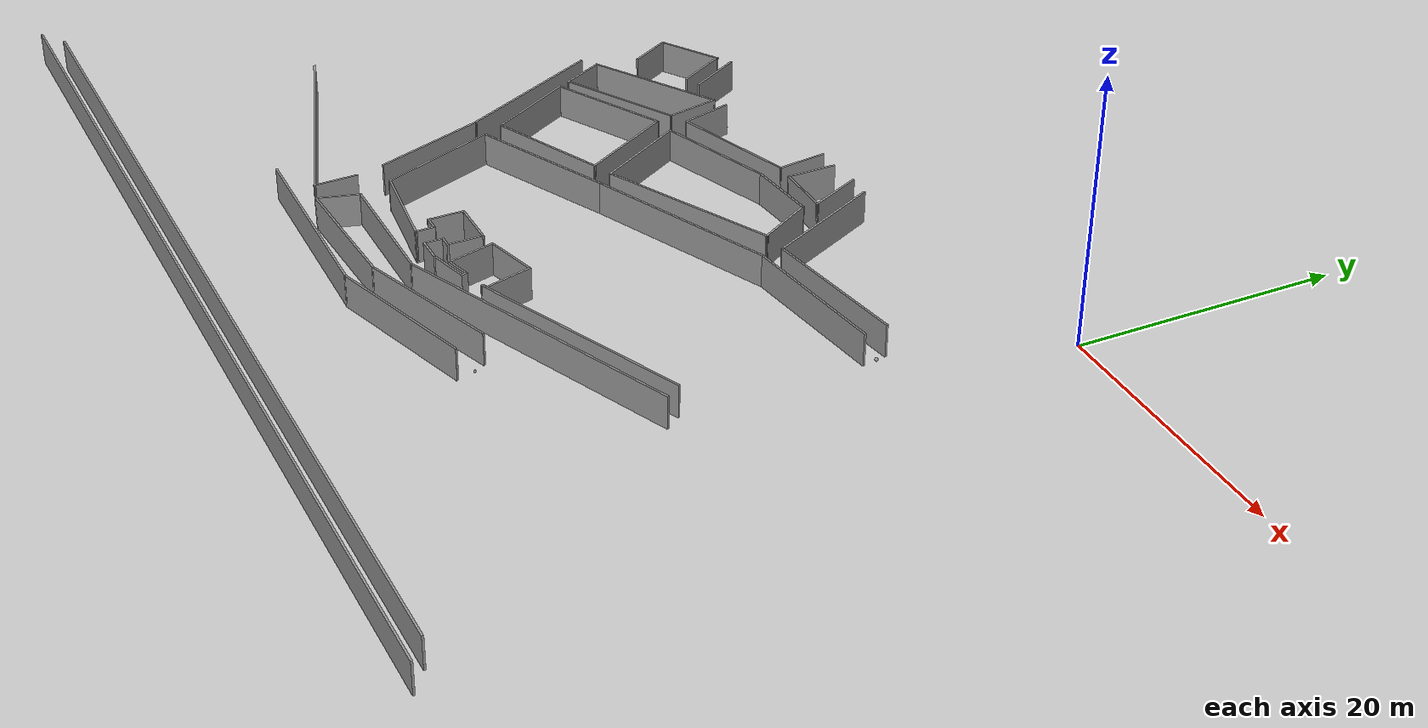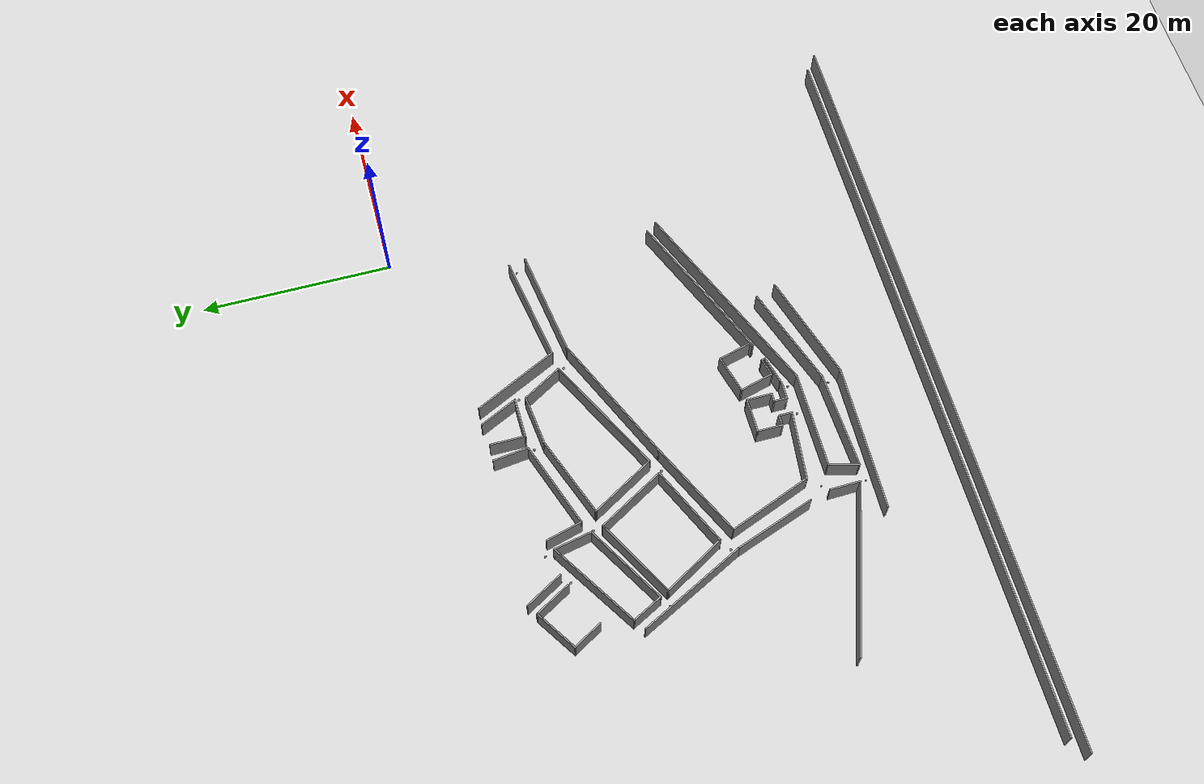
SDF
<sdf version="1.7">
 <world name="default">
  <model name="ground_plane">
   <static>1</static>
   <link name="link">
    <collision name="collision">
     <geometry><plane><normal>0 0 1</normal><size>100 100</size></plane></geometry>
     <surface><friction><ode><mu>100</mu><mu2>50</mu2></ode></friction></surface>
    </collision>
    <visual name="visual">
     <cast_shadows>0</cast_shadows>
     <geometry><plane><normal>0 0 1</normal><size>100 100</size></plane></geometry>
     <material>
      <script><uri>file://media/materials/scripts/gazebo.material</uri><name>Gazebo/Grey</name></script>
     </material>
    </visual>
   </link>
  </model>
  <model name="final_max_v1">
   <pose>-2.5231 0.6891 0 0 -0 0</pose>
   <link name="Wall_465">
    <collision name="Wall_465_Collision">
     <geometry><box><size>4.5 0.15 2.5</size></box></geometry>
     <pose>0 0 1.25 0 -0 0</pose>
    </collision>
    <visual name="Wall_465_Visual">
     <pose>0 0 1.25 0 -0 0</pose>
     <geometry><box><size>4.5 0.15 2.5</size></box></geometry>
     <material>
      <script><uri>file://media/materials/scripts/gazebo.material</uri><name>Gazebo/Grey</name></script>
      <ambient>1 1 1 1</ambient>
     </material>
     <meta><layer>0</layer></meta>
    </visual>
    <pose>-37.4503 -7.52646 0 0 -0 -1.0472</pose>
   </link>
   <link name="Wall_469">
    <collision name="Wall_469_Collision">
     <geometry><box><size>4.25 0.15 2.5</size></box></geometry>
     <pose>0 0 1.25 0 -0 0</pose>
    </collision>
    <visual name="Wall_469_Visual">
     <pose>0 0 1.25 0 -0 0</pose>
     <geometry><box><size>4.25 0.15 2.5</size></box></geometry>
     <material>
      <script><uri>file://media/materials/scripts/gazebo.material</uri><name>Gazebo/Grey</name></script>
      <ambient>1 1 1 1</ambient>
     </material>
     <meta><layer>0</layer></meta>
    </visual>
    <pose>-38.5562 -8.09874 0 0 -0 -1.0472</pose>
   </link>
   <link name="Wall_484">
    <collision name="Wall_484_Collision">
     <geometry><box><size>3.28141 0.15 2.5</size></box></geometry>
     <pose>0 0 1.25 0 -0 0</pose>
    </collision>
    <visual name="Wall_484_Visual">
     <pose>0 0 1.25 0 -0 0</pose>
     <geometry><box><size>3.28141 0.15 2.5</size></box></geometry>
     <material>
      <script><uri>file://media/materials/scripts/gazebo.material</uri><name>Gazebo/Grey</name></script>
      <ambient>1 1 1 1</ambient>
     </material>
     <meta><layer>0</layer></meta>
    </visual>
    <pose>-34.6377 -38.8153 0 0 -0 1.59579</pose>
   </link>
   <link name="Wall_486">
    <collision name="Wall_486_Collision">
     <geometry><box><size>18.0929 0.15 2.5</size></box></geometry>
     <pose>0 0 1.25 0 -0 0</pose>
    </collision>
    <visual name="Wall_486_Visual">
     <pose>0 0 1.25 0 -0 0</pose>
     <geometry><box><size>18.0929 0.15 2.5</size></box></geometry>
     <material>
      <script><uri>file://media/materials/scripts/gazebo.material</uri><name>Gazebo/Grey</name></script>
      <ambient>1 1 1 1</ambient>
     </material>
     <meta><layer>0</layer></meta>
    </visual>
    <pose>-43.0899 -37.4849 0 0 -0 2.81295</pose>
   </link>
   <link name="Wall_493">
    <collision name="Wall_493_Collision">
     <geometry><box><size>3.25 0.15 2.5</size></box></geometry>
     <pose>0 0 1.25 0 -0 0</pose>
    </collision>
    <visual name="Wall_493_Visual">
     <pose>0 0 1.25 0 -0 0</pose>
     <geometry><box><size>3.25 0.15 2.5</size></box></geometry>
     <material>
      <script><uri>file://media/materials/scripts/gazebo.material</uri><name>Gazebo/Grey</name></script>
      <ambient>1 1 1 1</ambient>
     </material>
     <meta><layer>0</layer></meta>
    </visual>
    <pose>-32.4716 -39.3814 0 0 -0 1.309</pose>
   </link>
   <link name="Wall_494">
    <collision name="Wall_494_Collision">
     <geometry><box><size>10.25 0.15 2.5</size></box></geometry>
     <pose>0 0 1.25 0 -0 0</pose>
    </collision>
    <visual name="Wall_494_Visual">
     <pose>0 0 1.25 0 -0 0</pose>
     <geometry><box><size>10.25 0.15 2.5</size></box></geometry>
     <material>
      <script><uri>file://media/materials/scripts/gazebo.material</uri><name>Gazebo/Grey</name></script>
      <ambient>1 1 1 1</ambient>
     </material>
     <meta><layer>0</layer></meta>
    </visual>
    <pose>-27.0205 -37.8842 0 0 -0 0</pose>
   </link>
   <link name="Wall_496">
    <collision name="Wall_496_Collision">
     <geometry><box><size>23.1194 0.15 2.5</size></box></geometry>
     <pose>0 0 1.25 0 -0 0</pose>
    </collision>
    <visual name="Wall_496_Visual">
     <pose>0 0 1.25 0 -0 0</pose>
     <geometry><box><size>23.1194 0.15 2.5</size></box></geometry>
     <material>
      <script><uri>file://media/materials/scripts/gazebo.material</uri><name>Gazebo/Grey</name></script>
      <ambient>1 1 1 1</ambient>
     </material>
     <meta><layer>0</layer></meta>
    </visual>
    <pose>-11.3836 -33.4327 0 0 -0 0.398025</pose>
   </link>
   <link name="Wall_501">
    <collision name="Wall_501_Collision">
     <geometry><box><size>10.3347 0.15 2.5</size></box></geometry>
     <pose>0 0 1.25 0 -0 0</pose>
    </collision>
    <visual name="Wall_501_Visual">
     <pose>0 0 1.25 0 -0 0</pose>
     <geometry><box><size>10.3347 0.15 2.5</size></box></geometry>
     <material>
      <script><uri>file://media/materials/scripts/gazebo.material</uri><name>Gazebo/Grey</name></script>
      <ambient>1 1 1 1</ambient>
     </material>
     <meta><layer>0</layer></meta>
    </visual>
    <pose>-27.7872 -40.6165 0 0 -0 0.051487</pose>
   </link>
   <link name="Wall_502">
    <collision name="Wall_502_Collision">
     <geometry><box><size>11.2662 0.15 2.5</size></box></geometry>
     <pose>0 0 1.25 0 -0 0</pose>
    </collision>
    <visual name="Wall_502_Visual">
     <pose>0 0 1.25 0 -0 0</pose>
     <geometry><box><size>11.2662 0.15 2.5</size></box></geometry>
     <material>
      <script><uri>file://media/materials/scripts/gazebo.material</uri><name>Gazebo/Grey</name></script>
      <ambient>1 1 1 1</ambient>
     </material>
     <meta><layer>0</layer></meta>
    </visual>
    <pose>-17.4514 -38.5302 0 0 -0 0.334408</pose>
   </link>
   <link name="Wall_510">
    <collision name="Wall_510_Collision">
     <geometry><box><size>7.39808 0.15 2.5</size></box></geometry>
     <pose>0 0 1.25 0 -0 0</pose>
    </collision>
    <visual name="Wall_510_Visual">
     <pose>0 0 1.25 0 -0 0</pose>
     <geometry><box><size>7.39808 0.15 2.5</size></box></geometry>
     <material>
      <script><uri>file://media/materials/scripts/gazebo.material</uri><name>Gazebo/Grey</name></script>
      <ambient>1 1 1 1</ambient>
     </material>
     <meta><layer>0</layer></meta>
    </visual>
    <pose>-29.3327 -35.7676 0 0 -0 3.03199</pose>
   </link>
   <link name="Wall_512">
    <collision name="Wall_512_Collision">
     <geometry><box><size>1.5 0.15 2.5</size></box></geometry>
     <pose>0 0 1.25 0 -0 0</pose>
    </collision>
    <visual name="Wall_512_Visual">
     <pose>0 0 1.25 0 -0 0</pose>
     <geometry><box><size>1.5 0.15 2.5</size></box></geometry>
     <material>
      <script><uri>file://media/materials/scripts/gazebo.material</uri><name>Gazebo/Grey</name></script>
      <ambient>1 1 1 1</ambient>
     </material>
     <meta><layer>0</layer></meta>
    </visual>
    <pose>-25.7305 -35.489 0 0 -0 1.5708</pose>
   </link>
   <link name="Wall_513">
    <collision name="Wall_513_Collision">
     <geometry><box><size>1.25 0.15 2.5</size></box></geometry>
     <pose>0 0 1.25 0 -0 0</pose>
    </collision>
    <visual name="Wall_513_Visual">
     <pose>0 0 1.25 0 -0 0</pose>
     <geometry><box><size>1.25 0.15 2.5</size></box></geometry>
     <material>
      <script><uri>file://media/materials/scripts/gazebo.material</uri><name>Gazebo/Grey</name></script>
      <ambient>1 1 1 1</ambient>
     </material>
     <meta><layer>0</layer></meta>
    </visual>
    <pose>-26.2805 -34.814 0 0 -0 3.14159</pose>
   </link>
   <link name="Wall_514">
    <collision name="Wall_514_Collision">
     <geometry><box><size>2.75 0.15 2.5</size></box></geometry>
     <pose>0 0 1.25 0 -0 0</pose>
    </collision>
    <visual name="Wall_514_Visual">
     <pose>0 0 1.25 0 -0 0</pose>
     <geometry><box><size>2.75 0.15 2.5</size></box></geometry>
     <material>
      <script><uri>file://media/materials/scripts/gazebo.material</uri><name>Gazebo/Grey</name></script>
      <ambient>1 1 1 1</ambient>
     </material>
     <meta><layer>0</layer></meta>
    </visual>
    <pose>-26.8305 -33.514 0 0 -0 1.5708</pose>
   </link>
   <link name="Wall_515">
    <collision name="Wall_515_Collision">
     <geometry><box><size>3.75 0.15 2.5</size></box></geometry>
     <pose>0 0 1.25 0 -0 0</pose>
    </collision>
    <visual name="Wall_515_Visual">
     <pose>0 0 1.25 0 -0 0</pose>
     <geometry><box><size>3.75 0.15 2.5</size></box></geometry>
     <material>
      <script><uri>file://media/materials/scripts/gazebo.material</uri><name>Gazebo/Grey</name></script>
      <ambient>1 1 1 1</ambient>
     </material>
     <meta><layer>0</layer></meta>
    </visual>
    <pose>-25.0305 -32.214 0 0 -0 0</pose>
   </link>
   <link name="Wall_525">
    <collision name="Wall_525_Collision">
     <geometry><box><size>2.75 0.15 2.5</size></box></geometry>
     <pose>0 0 1.25 0 -0 0</pose>
    </collision>
    <visual name="Wall_525_Visual">
     <pose>0 0 1.25 0 -0 0</pose>
     <geometry><box><size>2.75 0.15 2.5</size></box></geometry>
     <material>
      <script><uri>file://media/materials/scripts/gazebo.material</uri><name>Gazebo/Grey</name></script>
      <ambient>1 1 1 1</ambient>
     </material>
     <meta><layer>0</layer></meta>
    </visual>
    <pose>-23.2305 -33.514 0 0 -0 -1.5708</pose>
   </link>
   <link name="Wall_526">
    <collision name="Wall_526_Collision">
     <geometry><box><size>1 0.15 2.5</size></box></geometry>
     <pose>0 0 1.25 0 -0 0</pose>
    </collision>
    <visual name="Wall_526_Visual">
     <pose>0 0 1.25 0 -0 0</pose>
     <geometry><box><size>1 0.15 2.5</size></box></geometry>
     <material>
      <script><uri>file://media/materials/scripts/gazebo.material</uri><name>Gazebo/Grey</name></script>
      <ambient>1 1 1 1</ambient>
     </material>
     <meta><layer>0</layer></meta>
    </visual>
    <pose>-23.6555 -34.814 0 0 -0 3.14159</pose>
   </link>
   <link name="Wall_527">
    <collision name="Wall_527_Collision">
     <geometry><box><size>0.15 0.15 2.5</size></box></geometry>
     <pose>0 0 1.25 0 -0 0</pose>
    </collision>
    <visual name="Wall_527_Visual">
     <pose>0 0 1.25 0 -0 0</pose>
     <geometry><box><size>0.15 0.15 2.5</size></box></geometry>
     <material>
      <script><uri>file://media/materials/scripts/gazebo.material</uri><name>Gazebo/Grey</name></script>
      <ambient>0 0 0 1</ambient>
     </material>
     <meta><layer>0</layer></meta>
    </visual>
    <pose>-24.0805 -34.814 0 0 -0 0</pose>
   </link>
   <link name="Wall_528">
    <collision name="Wall_528_Collision">
     <geometry><box><size>1.5 0.15 2.5</size></box></geometry>
     <pose>0 0 1.25 0 -0 0</pose>
    </collision>
    <visual name="Wall_528_Visual">
     <pose>0 0 1.25 0 -0 0</pose>
     <geometry><box><size>1.5 0.15 2.5</size></box></geometry>
     <material>
      <script><uri>file://media/materials/scripts/gazebo.material</uri><name>Gazebo/Grey</name></script>
      <ambient>1 1 1 1</ambient>
     </material>
     <meta><layer>0</layer></meta>
    </visual>
    <pose>-24.0805 -35.489 0 0 -0 -1.5708</pose>
   </link>
   <link name="Wall_530">
    <collision name="Wall_530_Collision">
     <geometry><box><size>2 0.15 2.5</size></box></geometry>
     <pose>0 0 1.25 0 -0 0</pose>
    </collision>
    <visual name="Wall_530_Visual">
     <pose>0 0 1.25 0 -0 0</pose>
     <geometry><box><size>2 0.15 2.5</size></box></geometry>
     <material>
      <script><uri>file://media/materials/scripts/gazebo.material</uri><name>Gazebo/Grey</name></script>
      <ambient>1 1 1 1</ambient>
     </material>
     <meta><layer>0</layer></meta>
    </visual>
    <pose>-23.1555 -36.164 0 0 -0 0</pose>
   </link>
   <link name="Wall_539">
    <collision name="Wall_539_Collision">
     <geometry><box><size>14.8503 0.15 2.5</size></box></geometry>
     <pose>0 0 1.25 0 -0 0</pose>
    </collision>
    <visual name="Wall_539_Visual">
     <pose>0 0 1.25 0 -0 0</pose>
     <geometry><box><size>14.8503 0.15 2.5</size></box></geometry>
     <material>
      <script><uri>file://media/materials/scripts/gazebo.material</uri><name>Gazebo/Grey</name></script>
      <ambient>1 1 1 1</ambient>
     </material>
     <meta><layer>0</layer></meta>
    </visual>
    <pose>-19.5401 -19.1375 0 0 -0 0.41761</pose>
   </link>
   <link name="Wall_540">
    <collision name="Wall_540_Collision">
     <geometry><box><size>11.4761 0.15 2.5</size></box></geometry>
     <pose>0 0 1.25 0 -0 0</pose>
    </collision>
    <visual name="Wall_540_Visual">
     <pose>0 0 1.25 0 -0 0</pose>
     <geometry><box><size>11.4761 0.15 2.5</size></box></geometry>
     <material>
      <script><uri>file://media/materials/scripts/gazebo.material</uri><name>Gazebo/Grey</name></script>
      <ambient>1 1 1 1</ambient>
     </material>
     <meta><layer>0</layer></meta>
    </visual>
    <pose>-7.21545 -15.3556 0 0 -0 0.141897</pose>
   </link>
   <link name="Wall_546">
    <collision name="Wall_546_Collision">
     <geometry><box><size>13.8284 0.15 2.5</size></box></geometry>
     <pose>0 0 1.25 0 -0 0</pose>
    </collision>
    <visual name="Wall_546_Visual">
     <pose>0 0 1.25 0 -0 0</pose>
     <geometry><box><size>13.8284 0.15 2.5</size></box></geometry>
     <material>
      <script><uri>file://media/materials/scripts/gazebo.material</uri><name>Gazebo/Grey</name></script>
      <ambient>1 1 1 1</ambient>
     </material>
     <meta><layer>0</layer></meta>
    </visual>
    <pose>-21.0345 -17.8189 0 0 -0 0.467525</pose>
   </link>
   <link name="Wall_552">
    <collision name="Wall_552_Collision">
     <geometry><box><size>9.30829 0.15 2.5</size></box></geometry>
     <pose>0 0 1.25 0 -0 0</pose>
    </collision>
    <visual name="Wall_552_Visual">
     <pose>0 0 1.25 0 -0 0</pose>
     <geometry><box><size>9.30829 0.15 2.5</size></box></geometry>
     <material>
      <script><uri>file://media/materials/scripts/gazebo.material</uri><name>Gazebo/Grey</name></script>
      <ambient>1 1 1 1</ambient>
     </material>
     <meta><layer>0</layer></meta>
    </visual>
    <pose>-34.5805 -31.0979 0 0 -0 -1.20324</pose>
   </link>
   <link name="Wall_556">
    <collision name="Wall_556_Collision">
     <geometry><box><size>11.1725 0.15 2.5</size></box></geometry>
     <pose>0 0 1.25 0 -0 0</pose>
    </collision>
    <visual name="Wall_556_Visual">
     <pose>0 0 1.25 0 -0 0</pose>
     <geometry><box><size>11.1725 0.15 2.5</size></box></geometry>
     <material>
      <script><uri>file://media/materials/scripts/gazebo.material</uri><name>Gazebo/Grey</name></script>
      <ambient>1 1 1 1</ambient>
     </material>
     <meta><layer>0</layer></meta>
    </visual>
    <pose>-31.2423 -24.4715 0 0 -0 -2.70048</pose>
   </link>
   <link name="Wall_559">
    <collision name="Wall_559_Collision">
     <geometry><box><size>7.67149 0.15 2.5</size></box></geometry>
     <pose>0 0 1.25 0 -0 0</pose>
    </collision>
    <visual name="Wall_559_Visual">
     <pose>0 0 1.25 0 -0 0</pose>
     <geometry><box><size>7.67149 0.15 2.5</size></box></geometry>
     <material>
      <script><uri>file://media/materials/scripts/gazebo.material</uri><name>Gazebo/Grey</name></script>
      <ambient>1 1 1 1</ambient>
     </material>
     <meta><layer>0</layer></meta>
    </visual>
    <pose>-29.0376 -17.6544 0 0 -0 2.09976</pose>
   </link>
   <link name="Wall_561">
    <collision name="Wall_561_Collision">
     <geometry><box><size>9.11129 0.15 2.5</size></box></geometry>
     <pose>0 0 1.25 0 -0 0</pose>
    </collision>
    <visual name="Wall_561_Visual">
     <pose>0 0 1.25 0 -0 0</pose>
     <geometry><box><size>9.11129 0.15 2.5</size></box></geometry>
     <material>
      <script><uri>file://media/materials/scripts/gazebo.material</uri><name>Gazebo/Grey</name></script>
      <ambient>1 1 1 1</ambient>
     </material>
     <meta><layer>0</layer></meta>
    </visual>
    <pose>-26.7301 -12.8612 0 0 -0 0.352405</pose>
   </link>
   <link name="Wall_564">
    <collision name="Wall_564_Collision">
     <geometry><box><size>9.25649 0.15 2.5</size></box></geometry>
     <pose>0 0 1.25 0 -0 0</pose>
    </collision>
    <visual name="Wall_564_Visual">
     <pose>0 0 1.25 0 -0 0</pose>
     <geometry><box><size>9.25649 0.15 2.5</size></box></geometry>
     <material>
      <script><uri>file://media/materials/scripts/gazebo.material</uri><name>Gazebo/Grey</name></script>
      <ambient>1 1 1 1</ambient>
     </material>
     <meta><layer>0</layer></meta>
    </visual>
    <pose>-32.7796 -23.3619 0 0 -0 0.42944</pose>
   </link>
   <link name="Wall_565">
    <collision name="Wall_565_Collision">
     <geometry><box><size>8 0.15 2.5</size></box></geometry>
     <pose>0 0 1.25 0 -0 0</pose>
    </collision>
    <visual name="Wall_565_Visual">
     <pose>0 0 1.25 0 -0 0</pose>
     <geometry><box><size>8 0.15 2.5</size></box></geometry>
     <material>
      <script><uri>file://media/materials/scripts/gazebo.material</uri><name>Gazebo/Grey</name></script>
      <ambient>1 1 1 1</ambient>
     </material>
     <meta><layer>0</layer></meta>
    </visual>
    <pose>-30.6023 -18.0669 0 0 -0 2.0944</pose>
   </link>
   <link name="Wall_566">
    <collision name="Wall_566_Collision">
     <geometry><box><size>9.23539 0.15 2.5</size></box></geometry>
     <pose>0 0 1.25 0 -0 0</pose>
    </collision>
    <visual name="Wall_566_Visual">
     <pose>0 0 1.25 0 -0 0</pose>
     <geometry><box><size>9.23539 0.15 2.5</size></box></geometry>
     <material>
      <script><uri>file://media/materials/scripts/gazebo.material</uri><name>Gazebo/Grey</name></script>
      <ambient>1 1 1 1</ambient>
     </material>
     <meta><layer>0</layer></meta>
    </visual>
    <pose>-36.5605 -16.8289 0 0 -0 -2.6458</pose>
   </link>
   <link name="Wall_567">
    <collision name="Wall_567_Collision">
     <geometry><box><size>7.39646 0.15 2.5</size></box></geometry>
     <pose>0 0 1.25 0 -0 0</pose>
    </collision>
    <visual name="Wall_567_Visual">
     <pose>0 0 1.25 0 -0 0</pose>
     <geometry><box><size>7.39646 0.15 2.5</size></box></geometry>
     <material>
      <script><uri>file://media/materials/scripts/gazebo.material</uri><name>Gazebo/Grey</name></script>
      <ambient>1 1 1 1</ambient>
     </material>
     <meta><layer>0</layer></meta>
    </visual>
    <pose>-38.7378 -22.1238 0 0 -0 -1.04503</pose>
   </link>
   <link name="Wall_570">
    <collision name="Wall_570_Collision">
     <geometry><box><size>8.86336 0.15 2.5</size></box></geometry>
     <pose>0 0 1.25 0 -0 0</pose>
    </collision>
    <visual name="Wall_570_Visual">
     <pose>0 0 1.25 0 -0 0</pose>
     <geometry><box><size>8.86336 0.15 2.5</size></box></geometry>
     <material>
      <script><uri>file://media/materials/scripts/gazebo.material</uri><name>Gazebo/Grey</name></script>
      <ambient>1 1 1 1</ambient>
     </material>
     <meta><layer>0</layer></meta>
    </visual>
    <pose>-36.6872 -30.9064 0 0 -0 1.91501</pose>
   </link>
   <link name="Wall_571">
    <collision name="Wall_571_Collision">
     <geometry><box><size>12.3657 0.15 2.5</size></box></geometry>
     <pose>0 0 1.25 0 -0 0</pose>
    </collision>
    <visual name="Wall_571_Visual">
     <pose>0 0 1.25 0 -0 0</pose>
     <geometry><box><size>12.3657 0.15 2.5</size></box></geometry>
     <material>
      <script><uri>file://media/materials/scripts/gazebo.material</uri><name>Gazebo/Grey</name></script>
      <ambient>1 1 1 1</ambient>
     </material>
     <meta><layer>0</layer></meta>
    </visual>
    <pose>-40.9044 -21.35 0 0 -0 2.03728</pose>
   </link>
   <link name="Wall_576">
    <collision name="Wall_576_Collision">
     <geometry><box><size>5.446 0.15 2.5</size></box></geometry>
     <pose>0 0 1.25 0 -0 0</pose>
    </collision>
    <visual name="Wall_576_Visual">
     <pose>0 0 1.25 0 -0 0</pose>
     <geometry><box><size>5.446 0.15 2.5</size></box></geometry>
     <material>
      <script><uri>file://media/materials/scripts/gazebo.material</uri><name>Gazebo/Grey</name></script>
      <ambient>1 1 1 1</ambient>
     </material>
     <meta><layer>0</layer></meta>
    </visual>
    <pose>-19.8928 -11.024 0 0 -0 0.10998</pose>
   </link>
   <link name="Wall_578">
    <collision name="Wall_578_Collision">
     <geometry><box><size>4.78278 0.15 2.5</size></box></geometry>
     <pose>0 0 1.25 0 -0 0</pose>
    </collision>
    <visual name="Wall_578_Visual">
     <pose>0 0 1.25 0 -0 0</pose>
     <geometry><box><size>4.78278 0.15 2.5</size></box></geometry>
     <material>
      <script><uri>file://media/materials/scripts/gazebo.material</uri><name>Gazebo/Grey</name></script>
      <ambient>1 1 1 1</ambient>
     </material>
     <meta><layer>0</layer></meta>
    </visual>
    <pose>-16.0951 -12.735 0 0 -0 -1.0434</pose>
   </link>
   <link name="Wall_583">
    <collision name="Wall_583_Collision">
     <geometry><box><size>4.15341 0.15 2.5</size></box></geometry>
     <pose>0 0 1.25 0 -0 0</pose>
    </collision>
    <visual name="Wall_583_Visual">
     <pose>0 0 1.25 0 -0 0</pose>
     <geometry><box><size>4.15341 0.15 2.5</size></box></geometry>
     <material>
      <script><uri>file://media/materials/scripts/gazebo.material</uri><name>Gazebo/Grey</name></script>
      <ambient>1 1 1 1</ambient>
     </material>
     <meta><layer>0</layer></meta>
    </visual>
    <pose>-33.2902 -11.4567 0 0 -0 -1.3738</pose>
   </link>
   <link name="Wall_584">
    <collision name="Wall_584_Collision">
     <geometry><box><size>9.5 0.15 2.5</size></box></geometry>
     <pose>0 0 1.25 0 -0 0</pose>
    </collision>
    <visual name="Wall_584_Visual">
     <pose>0 0 1.25 0 -0 0</pose>
     <geometry><box><size>9.5 0.15 2.5</size></box></geometry>
     <material>
      <script><uri>file://media/materials/scripts/gazebo.material</uri><name>Gazebo/Grey</name></script>
      <ambient>1 1 1 1</ambient>
     </material>
     <meta><layer>0</layer></meta>
    </visual>
    <pose>-36.9471 -15.7572 0 0 -0 -2.61799</pose>
   </link>
   <link name="Wall_585">
    <collision name="Wall_585_Collision">
     <geometry><box><size>3.57821 0.15 2.5</size></box></geometry>
     <pose>0 0 1.25 0 -0 0</pose>
    </collision>
    <visual name="Wall_585_Visual">
     <pose>0 0 1.25 0 -0 0</pose>
     <geometry><box><size>3.57821 0.15 2.5</size></box></geometry>
     <material>
      <script><uri>file://media/materials/scripts/gazebo.material</uri><name>Gazebo/Grey</name></script>
      <ambient>1 1 1 1</ambient>
     </material>
     <meta><layer>0</layer></meta>
    </visual>
    <pose>-41.7856 -16.5735 0 0 -0 2.04971</pose>
   </link>
   <link name="Wall_586">
    <collision name="Wall_586_Collision">
     <geometry><box><size>10.6377 0.15 2.5</size></box></geometry>
     <pose>0 0 1.25 0 -0 0</pose>
    </collision>
    <visual name="Wall_586_Visual">
     <pose>0 0 1.25 0 -0 0</pose>
     <geometry><box><size>10.6377 0.15 2.5</size></box></geometry>
     <material>
      <script><uri>file://media/materials/scripts/gazebo.material</uri><name>Gazebo/Grey</name></script>
      <ambient>1 1 1 1</ambient>
     </material>
     <meta><layer>0</layer></meta>
    </visual>
    <pose>-38.1287 -12.273 0 0 -0 0.558599</pose>
   </link>
   <link name="Wall_588">
    <collision name="Wall_588_Collision">
     <geometry><box><size>4 0.15 2.5</size></box></geometry>
     <pose>0 0 1.25 0 -0 0</pose>
    </collision>
    <visual name="Wall_588_Visual">
     <pose>0 0 1.25 0 -0 0</pose>
     <geometry><box><size>4 0.15 2.5</size></box></geometry>
     <material>
      <script><uri>file://media/materials/scripts/gazebo.material</uri><name>Gazebo/Grey</name></script>
      <ambient>1 1 1 1</ambient>
     </material>
     <meta><layer>0</layer></meta>
    </visual>
    <pose>-32.1306 -10.8851 0 0 -0 -1.309</pose>
   </link>
   <link name="Wall_591">
    <collision name="Wall_591_Collision">
     <geometry><box><size>9.64127 0.15 2.5</size></box></geometry>
     <pose>0 0 1.25 0 -0 0</pose>
    </collision>
    <visual name="Wall_591_Visual">
     <pose>0 0 1.25 0 -0 0</pose>
     <geometry><box><size>9.64127 0.15 2.5</size></box></geometry>
     <material>
      <script><uri>file://media/materials/scripts/gazebo.material</uri><name>Gazebo/Grey</name></script>
      <ambient>1 1 1 1</ambient>
     </material>
     <meta><layer>0</layer></meta>
    </visual>
    <pose>-27.1482 -11.1909 0 0 -0 0.333529</pose>
   </link>
   <link name="Wall_593">
    <collision name="Wall_593_Collision">
     <geometry><box><size>3.81354 0.15 2.5</size></box></geometry>
     <pose>0 0 1.25 0 -0 0</pose>
    </collision>
    <visual name="Wall_593_Visual">
     <pose>0 0 1.25 0 -0 0</pose>
     <geometry><box><size>3.81354 0.15 2.5</size></box></geometry>
     <material>
      <script><uri>file://media/materials/scripts/gazebo.material</uri><name>Gazebo/Grey</name></script>
      <ambient>1 1 1 1</ambient>
     </material>
     <meta><layer>0</layer></meta>
    </visual>
    <pose>-22.8813 -7.81839 0 0 -0 1.68964</pose>
   </link>
   <link name="Wall_596">
    <collision name="Wall_596_Collision">
     <geometry><box><size>3.75 0.15 2.5</size></box></geometry>
     <pose>0 0 1.25 0 -0 0</pose>
    </collision>
    <visual name="Wall_596_Visual">
     <pose>0 0 1.25 0 -0 0</pose>
     <geometry><box><size>3.75 0.15 2.5</size></box></geometry>
     <material>
      <script><uri>file://media/materials/scripts/gazebo.material</uri><name>Gazebo/Grey</name></script>
      <ambient>1 1 1 1</ambient>
     </material>
     <meta><layer>0</layer></meta>
    </visual>
    <pose>-21.349 -7.86683 0 0 -0 -1.5708</pose>
   </link>
   <link name="Wall_597">
    <collision name="Wall_597_Collision">
     <geometry><box><size>4.32191 0.15 2.5</size></box></geometry>
     <pose>0 0 1.25 0 -0 0</pose>
    </collision>
    <visual name="Wall_597_Visual">
     <pose>0 0 1.25 0 -0 0</pose>
     <geometry><box><size>4.32191 0.15 2.5</size></box></geometry>
     <material>
      <script><uri>file://media/materials/scripts/gazebo.material</uri><name>Gazebo/Grey</name></script>
      <ambient>1 1 1 1</ambient>
     </material>
     <meta><layer>0</layer></meta>
    </visual>
    <pose>-19.2631 -9.64992 0 0 -0 0.008105</pose>
   </link>
   <link name="Wall_598">
    <collision name="Wall_598_Collision">
     <geometry><box><size>4.39386 0.15 2.5</size></box></geometry>
     <pose>0 0 1.25 0 -0 0</pose>
    </collision>
    <visual name="Wall_598_Visual">
     <pose>0 0 1.25 0 -0 0</pose>
     <geometry><box><size>4.39386 0.15 2.5</size></box></geometry>
     <material>
      <script><uri>file://media/materials/scripts/gazebo.material</uri><name>Gazebo/Grey</name></script>
      <ambient>1 1 1 1</ambient>
     </material>
     <meta><layer>0</layer></meta>
    </visual>
    <pose>-18.0856 -7.71535 0 0 -0 2.01317</pose>
   </link>
   <link name="Wall_6">
    <collision name="Wall_6_Collision">
     <geometry><box><size>81.25 0.15 2.5</size></box></geometry>
     <pose>0 0 1.25 0 -0 0</pose>
    </collision>
    <visual name="Wall_6_Visual">
     <pose>0 0 1.25 0 -0 0</pose>
     <geometry><box><size>81.25 0.15 2.5</size></box></geometry>
     <material>
      <script><uri>file://media/materials/scripts/gazebo.material</uri><name>Gazebo/Grey</name></script>
      <ambient>1 1 1 1</ambient>
     </material>
     <meta><layer>0</layer></meta>
    </visual>
    <pose>-25.0393 -52.0706 0 0 -0 0</pose>
   </link>
   <link name="Wall_601">
    <collision name="Wall_601_Collision">
     <geometry><box><size>9.71984 0.15 2.5</size></box></geometry>
     <pose>0 0 1.25 0 -0 0</pose>
    </collision>
    <visual name="Wall_601_Visual">
     <pose>0 0 1.25 0 -0 0</pose>
     <geometry><box><size>9.71984 0.15 2.5</size></box></geometry>
     <material>
      <script><uri>file://media/materials/scripts/gazebo.material</uri><name>Gazebo/Grey</name></script>
      <ambient>1 1 1 1</ambient>
     </material>
     <meta><layer>0</layer></meta>
    </visual>
    <pose>-15.0913 -10.2386 0 0 -0 -1.11973</pose>
   </link>
   <link name="Wall_602">
    <collision name="Wall_602_Collision">
     <geometry><box><size>11.3908 0.15 2.5</size></box></geometry>
     <pose>0 0 1.25 0 -0 0</pose>
    </collision>
    <visual name="Wall_602_Visual">
     <pose>0 0 1.25 0 -0 0</pose>
     <geometry><box><size>11.3908 0.15 2.5</size></box></geometry>
     <material>
      <script><uri>file://media/materials/scripts/gazebo.material</uri><name>Gazebo/Grey</name></script>
      <ambient>1 1 1 1</ambient>
     </material>
     <meta><layer>0</layer></meta>
    </visual>
    <pose>-7.45639 -13.6522 0 0 -0 0.159507</pose>
   </link>
   <link name="Wall_645">
    <collision name="Wall_645_Collision">
     <geometry><box><size>3 0.15 2.5</size></box></geometry>
     <pose>0 0 1.25 0 -0 0</pose>
    </collision>
    <visual name="Wall_645_Visual">
     <pose>0 0 1.25 0 -0 0</pose>
     <geometry><box><size>3 0.15 2.5</size></box></geometry>
     <material>
      <script><uri>file://media/materials/scripts/gazebo.material</uri><name>Gazebo/Grey</name></script>
      <ambient>1 1 1 1</ambient>
     </material>
     <meta><layer>0</layer></meta>
    </visual>
    <pose>-20.6198 -35.7137 0 0 -0 0.261799</pose>
   </link>
   <link name="Wall_646">
    <collision name="Wall_646_Collision">
     <geometry><box><size>0.5 0.15 2.5</size></box></geometry>
     <pose>0 0 1.25 0 -0 0</pose>
    </collision>
    <visual name="Wall_646_Visual">
     <pose>0 0 1.25 0 -0 0</pose>
     <geometry><box><size>0.5 0.15 2.5</size></box></geometry>
     <material>
      <script><uri>file://media/materials/scripts/gazebo.material</uri><name>Gazebo/Grey</name></script>
      <ambient>1 1 1 1</ambient>
     </material>
     <meta><layer>0</layer></meta>
    </visual>
    <pose>-19.2886 -35.1758 0 0 -0 1.8326</pose>
   </link>
   <link name="Wall_647">
    <collision name="Wall_647_Collision">
     <geometry><box><size>2 0.15 2.5</size></box></geometry>
     <pose>0 0 1.25 0 -0 0</pose>
    </collision>
    <visual name="Wall_647_Visual">
     <pose>0 0 1.25 0 -0 0</pose>
     <geometry><box><size>2 0.15 2.5</size></box></geometry>
     <material>
      <script><uri>file://media/materials/scripts/gazebo.material</uri><name>Gazebo/Grey</name></script>
      <ambient>1 1 1 1</ambient>
     </material>
     <meta><layer>0</layer></meta>
    </visual>
    <pose>-20.2274 -35.2462 0 0 -0 -2.87979</pose>
   </link>
   <link name="Wall_648">
    <collision name="Wall_648_Collision">
     <geometry><box><size>3.75 0.15 2.5</size></box></geometry>
     <pose>0 0 1.25 0 -0 0</pose>
    </collision>
    <visual name="Wall_648_Visual">
     <pose>0 0 1.25 0 -0 0</pose>
     <geometry><box><size>3.75 0.15 2.5</size></box></geometry>
     <material>
      <script><uri>file://media/materials/scripts/gazebo.material</uri><name>Gazebo/Grey</name></script>
      <ambient>1 1 1 1</ambient>
     </material>
     <meta><layer>0</layer></meta>
    </visual>
    <pose>-21.5867 -33.7469 0 0 -0 1.8326</pose>
   </link>
   <link name="Wall_649">
    <collision name="Wall_649_Collision">
     <geometry><box><size>4.25 0.15 2.5</size></box></geometry>
     <pose>0 0 1.25 0 -0 0</pose>
    </collision>
    <visual name="Wall_649_Visual">
     <pose>0 0 1.25 0 -0 0</pose>
     <geometry><box><size>4.25 0.15 2.5</size></box></geometry>
     <material>
      <script><uri>file://media/materials/scripts/gazebo.material</uri><name>Gazebo/Grey</name></script>
      <ambient>1 1 1 1</ambient>
     </material>
     <meta><layer>0</layer></meta>
    </visual>
    <pose>-20.0725 -31.4777 0 0 -0 0.261799</pose>
   </link>
   <link name="Wall_650">
    <collision name="Wall_650_Collision">
     <geometry><box><size>3.75 0.15 2.5</size></box></geometry>
     <pose>0 0 1.25 0 -0 0</pose>
    </collision>
    <visual name="Wall_650_Visual">
     <pose>0 0 1.25 0 -0 0</pose>
     <geometry><box><size>3.75 0.15 2.5</size></box></geometry>
     <material>
      <script><uri>file://media/materials/scripts/gazebo.material</uri><name>Gazebo/Grey</name></script>
      <ambient>1 1 1 1</ambient>
     </material>
     <meta><layer>0</layer></meta>
    </visual>
    <pose>-17.6264 -32.6858 0 0 -0 -1.309</pose>
   </link>
   <link name="Wall_651">
    <collision name="Wall_651_Collision">
     <geometry><box><size>0.5 0.15 2.5</size></box></geometry>
     <pose>0 0 1.25 0 -0 0</pose>
    </collision>
    <visual name="Wall_651_Visual">
     <pose>0 0 1.25 0 -0 0</pose>
     <geometry><box><size>0.5 0.15 2.5</size></box></geometry>
     <material>
      <script><uri>file://media/materials/scripts/gazebo.material</uri><name>Gazebo/Grey</name></script>
      <ambient>1 1 1 1</ambient>
     </material>
     <meta><layer>0</layer></meta>
    </visual>
    <pose>-17.3296 -34.4697 0 0 -0 -2.87979</pose>
   </link>
   <link name="Wall_652">
    <collision name="Wall_652_Collision">
     <geometry><box><size>0.25 0.15 2.5</size></box></geometry>
     <pose>0 0 1.25 0 -0 0</pose>
    </collision>
    <visual name="Wall_652_Visual">
     <pose>0 0 1.25 0 -0 0</pose>
     <geometry><box><size>0.25 0.15 2.5</size></box></geometry>
     <material>
      <script><uri>file://media/materials/scripts/gazebo.material</uri><name>Gazebo/Grey</name></script>
      <ambient>1 1 1 1</ambient>
     </material>
     <meta><layer>0</layer></meta>
    </visual>
    <pose>-17.4857 -34.5633 0 0 -0 -1.309</pose>
   </link>
   <link name="Wall_653">
    <collision name="Wall_653_Collision">
     <geometry><box><size>17.3947 0.15 2.5</size></box></geometry>
     <pose>0 0 1.25 0 -0 0</pose>
    </collision>
    <visual name="Wall_653_Visual">
     <pose>0 0 1.25 0 -0 0</pose>
     <geometry><box><size>17.3947 0.15 2.5</size></box></geometry>
     <material>
      <script><uri>file://media/materials/scripts/gazebo.material</uri><name>Gazebo/Grey</name></script>
      <ambient>1 1 1 1</ambient>
     </material>
     <meta><layer>0</layer></meta>
    </visual>
    <pose>-9.5416 -31.229 0 0 -0 0.403134</pose>
   </link>
   <link name="Wall_657">
    <collision name="Wall_657_Collision">
     <geometry><box><size>5.03237 0.15 2.5</size></box></geometry>
     <pose>0 0 1.25 0 -0 0</pose>
    </collision>
    <visual name="Wall_657_Visual">
     <pose>0 0 1.25 0 -0 0</pose>
     <geometry><box><size>5.03237 0.15 2.5</size></box></geometry>
     <material>
      <script><uri>file://media/materials/scripts/gazebo.material</uri><name>Gazebo/Grey</name></script>
      <ambient>1 1 1 1</ambient>
     </material>
     <meta><layer>0</layer></meta>
    </visual>
    <pose>-41.6338 -7.64491 0 0 -0 0.572037</pose>
   </link>
   <link name="Wall_666">
    <collision name="Wall_666_Collision">
     <geometry><box><size>3.5 0.15 2.5</size></box></geometry>
     <pose>0 0 1.25 0 -0 0</pose>
    </collision>
    <visual name="Wall_666_Visual">
     <pose>0 0 1.25 0 -0 0</pose>
     <geometry><box><size>3.5 0.15 2.5</size></box></geometry>
     <material>
      <script><uri>file://media/materials/scripts/gazebo.material</uri><name>Gazebo/Grey</name></script>
      <ambient>1 1 1 1</ambient>
     </material>
     <meta><layer>0</layer></meta>
    </visual>
    <pose>-42.8488 -10.417 0 0 -0 -1.0472</pose>
   </link>
   <link name="Wall_75">
    <collision name="Wall_75_Collision">
     <geometry><box><size>77.75 0.15 2.5</size></box></geometry>
     <pose>0 0 1.25 0 -0 0</pose>
    </collision>
    <visual name="Wall_75_Visual">
     <pose>0 0 1.25 0 -0 0</pose>
     <geometry><box><size>77.75 0.15 2.5</size></box></geometry>
     <material>
      <script><uri>file://media/materials/scripts/gazebo.material</uri><name>Gazebo/Grey</name></script>
      <ambient>1 1 1 1</ambient>
     </material>
     <meta><layer>0</layer></meta>
    </visual>
    <pose>-24.9793 -50.7916 0 0 -0 0</pose>
   </link>
   <link name="Wall_85">
    <collision name="Wall_85_Collision">
     <geometry><box><size>11.8483 0.15 2.5</size></box></geometry>
     <pose>0 0 1.25 0 -0 0</pose>
    </collision>
    <visual name="Wall_85_Visual">
     <pose>0 0 1.25 0 -0 0</pose>
     <geometry><box><size>11.8483 0.15 2.5</size></box></geometry>
     <material>
      <script><uri>file://media/materials/scripts/gazebo.material</uri><name>Gazebo/Grey</name></script>
      <ambient>1 1 1 1</ambient>
     </material>
     <meta><layer>0</layer></meta>
    </visual>
    <pose>-16.9283 -40.6486 0 0 -0 -2.84223</pose>
   </link>
   <link name="Wall_86">
    <collision name="Wall_86_Collision">
     <geometry><box><size>15.4705 0.15 2.5</size></box></geometry>
     <pose>0 0 1.25 0 -0 0</pose>
    </collision>
    <visual name="Wall_86_Visual">
     <pose>0 0 1.25 0 -0 0</pose>
     <geometry><box><size>15.4705 0.15 2.5</size></box></geometry>
     <material>
      <script><uri>file://media/materials/scripts/gazebo.material</uri><name>Gazebo/Grey</name></script>
      <ambient>1 1 1 1</ambient>
     </material>
     <meta><layer>0</layer></meta>
    </visual>
    <pose>-30.1763 -42.2356 0 0 -0 3.12358</pose>
   </link>
   <static>1</static>
  </model>
  <model name="id_111">
   <pose>-14.192 -36.8705 0.098466 0 -0 0</pose>
   <link name="link">
    <inertial>
     <mass>1</mass>
     <inertia><ixx>0.1</ixx><ixy>0</ixy><ixz>0</ixz><iyy>0.1</iyy><iyz>0</iyz><izz>0.1</izz></inertia>
    </inertial>
    <collision name="collision"><geometry><sphere><radius>0.0984663</radius></sphere></geometry></collision>
    <visual name="visual">
     <geometry><sphere><radius>0.0984663</radius></sphere></geometry>
     <material>
      <script><name>Gazebo/Grey</name><uri>file://media/materials/scripts/gazebo.material</uri></script>
     </material>
    </visual>
   </link>
  </model>
  <model name="id_112">
   <pose>-25.0009 -40.6758 0.098466 0 -0 0</pose>
   <link name="link">
    <inertial>
     <mass>1</mass>
     <inertia><ixx>0.1</ixx><ixy>0</ixy><ixz>0</ixz><iyy>0.1</iyy><iyz>0</iyz><izz>0.1</izz></inertia>
    </inertial>
    <collision name="collision"><geometry><sphere><radius>0.0984663</radius></sphere></geometry></collision>
    <visual name="visual">
     <geometry><sphere><radius>0.0984663</radius></sphere></geometry>
     <material>
      <script><name>Gazebo/Grey</name><uri>file://media/materials/scripts/gazebo.material</uri></script>
     </material>
    </visual>
   </link>
  </model>
  <model name="id_114">
   <pose>-36.324 -40.8786 0.098466 0 -0 0</pose>
   <link name="link">
    <inertial>
     <mass>1</mass>
     <inertia><ixx>0.1</ixx><ixy>0</ixy><ixz>0</ixz><iyy>0.1</iyy><iyz>0</iyz><izz>0.1</izz></inertia>
    </inertial>
    <collision name="collision"><geometry><sphere><radius>0.0984663</radius></sphere></geometry></collision>
    <visual name="visual">
     <geometry><sphere><radius>0.0984663</radius></sphere></geometry>
     <material>
      <script><name>Gazebo/Grey</name><uri>file://media/materials/scripts/gazebo.material</uri></script>
     </material>
    </visual>
   </link>
  </model>
  <model name="id_115">
   <pose>-35.7531 -36.3996 0.098466 0 -0 0</pose>
   <link name="link">
    <inertial>
     <mass>1</mass>
     <inertia><ixx>0.1</ixx><ixy>0</ixy><ixz>0</ixz><iyy>0.1</iyy><iyz>0</iyz><izz>0.1</izz></inertia>
    </inertial>
    <collision name="collision"><geometry><sphere><radius>0.0984663</radius></sphere></geometry></collision>
    <visual name="visual">
     <geometry><sphere><radius>0.0984663</radius></sphere></geometry>
     <material>
      <script><name>Gazebo/Grey</name><uri>file://media/materials/scripts/gazebo.material</uri></script>
     </material>
    </visual>
   </link>
  </model>
  <model name="id_42">
   <pose>-4.19541 -12.8435 0.128457 0 -0 0</pose>
   <link name="link">
    <inertial>
     <mass>1</mass>
     <inertia><ixx>0.1</ixx><ixy>0</ixy><ixz>0</ixz><iyy>0.1</iyy><iyz>0</iyz><izz>0.1</izz></inertia>
    </inertial>
    <collision name="collision"><geometry><sphere><radius>0.128457</radius></sphere></geometry></collision>
    <visual name="visual">
     <geometry><sphere><radius>0.128457</radius></sphere></geometry>
     <material>
      <script><name>Gazebo/Grey</name><uri>file://media/materials/scripts/gazebo.material</uri></script>
     </material>
    </visual>
   </link>
  </model>
  <model name="id_44">
   <pose>-16.4118 -14.8148 0.128457 0 -0 0</pose>
   <link name="link">
    <inertial>
     <mass>1</mass>
     <inertia><ixx>0.1</ixx><ixy>0</ixy><ixz>0</ixz><iyy>0.1</iyy><iyz>0</iyz><izz>0.1</izz></inertia>
    </inertial>
    <collision name="collision"><geometry><sphere><radius>0.128457</radius></sphere></geometry></collision>
    <visual name="visual">
     <geometry><sphere><radius>0.128457</radius></sphere></geometry>
     <material>
      <script><name>Gazebo/Grey</name><uri>file://media/materials/scripts/gazebo.material</uri></script>
     </material>
    </visual>
   </link>
  </model>
  <model name="id_45">
   <pose>-18.7538 -9.4996 0.128457 0 -0 0</pose>
   <link name="link">
    <inertial>
     <mass>1</mass>
     <inertia><ixx>0.1</ixx><ixy>0</ixy><ixz>0</ixz><iyy>0.1</iyy><iyz>0</iyz><izz>0.1</izz></inertia>
    </inertial>
    <collision name="collision"><geometry><sphere><radius>0.128457</radius></sphere></geometry></collision>
    <visual name="visual">
     <geometry><sphere><radius>0.128457</radius></sphere></geometry>
     <material>
      <script><name>Gazebo/Grey</name><uri>file://media/materials/scripts/gazebo.material</uri></script>
     </material>
    </visual>
   </link>
  </model>
  <model name="id_66">
   <pose>-39.1482 -9.66866 0.128457 0 -0 0</pose>
   <link name="link">
    <inertial>
     <mass>1</mass>
     <inertia><ixx>0.1</ixx><ixy>0</ixy><ixz>0</ixz><iyy>0.1</iyy><iyz>0</iyz><izz>0.1</izz></inertia>
    </inertial>
    <collision name="collision"><geometry><sphere><radius>0.128457</radius></sphere></geometry></collision>
    <visual name="visual">
     <geometry><sphere><radius>0.128457</radius></sphere></geometry>
     <material>
      <script><name>Gazebo/Grey</name><uri>file://media/materials/scripts/gazebo.material</uri></script>
     </material>
    </visual>
   </link>
  </model>
  <model name="id_67">
   <pose>-35.8848 -7.93167 0.128457 0 -0 0</pose>
   <link name="link">
    <inertial>
     <mass>1</mass>
     <inertia><ixx>0.1</ixx><ixy>0</ixy><ixz>0</ixz><iyy>0.1</iyy><iyz>0</iyz><izz>0.1</izz></inertia>
    </inertial>
    <collision name="collision"><geometry><sphere><radius>0.128457</radius></sphere></geometry></collision>
    <visual name="visual">
     <geometry><sphere><radius>0.128457</radius></sphere></geometry>
     <material>
      <script><name>Gazebo/Grey</name><uri>file://media/materials/scripts/gazebo.material</uri></script>
     </material>
    </visual>
   </link>
  </model>
  <model name="id_68">
   <pose>-34.5297 -13.1594 0.128457 0 -0 0</pose>
   <link name="link">
    <inertial>
     <mass>1</mass>
     <inertia><ixx>0.1</ixx><ixy>0</ixy><ixz>0</ixz><iyy>0.1</iyy><iyz>0</iyz><izz>0.1</izz></inertia>
    </inertial>
    <collision name="collision"><geometry><sphere><radius>0.128457</radius></sphere></geometry></collision>
    <visual name="visual">
     <geometry><sphere><radius>0.128457</radius></sphere></geometry>
     <material>
      <script><name>Gazebo/Grey</name><uri>file://media/materials/scripts/gazebo.material</uri></script>
     </material>
    </visual>
   </link>
  </model>
  <model name="id_69">
   <pose>-24.5426 -9.66859 0.128457 0 -0 0</pose>
   <link name="link">
    <inertial>
     <mass>1</mass>
     <inertia><ixx>0.1</ixx><ixy>0</ixy><ixz>0</ixz><iyy>0.1</iyy><iyz>0</iyz><izz>0.1</izz></inertia>
    </inertial>
    <collision name="collision"><geometry><sphere><radius>0.128457</radius></sphere></geometry></collision>
    <visual name="visual">
     <geometry><sphere><radius>0.128457</radius></sphere></geometry>
     <material>
      <script><name>Gazebo/Grey</name><uri>file://media/materials/scripts/gazebo.material</uri></script>
     </material>
    </visual>
   </link>
  </model>
  <model name="id_72">
   <pose>-30.09 -21.4052 0.128457 0 -0 0</pose>
   <link name="link">
    <inertial>
     <mass>1</mass>
     <inertia><ixx>0.1</ixx><ixy>0</ixy><ixz>0</ixz><iyy>0.1</iyy><iyz>0</iyz><izz>0.1</izz></inertia>
    </inertial>
    <collision name="collision"><geometry><sphere><radius>0.128457</radius></sphere></geometry></collision>
    <visual name="visual">
     <geometry><sphere><radius>0.128457</radius></sphere></geometry>
     <material>
      <script><name>Gazebo/Grey</name><uri>file://media/materials/scripts/gazebo.material</uri></script>
     </material>
    </visual>
   </link>
  </model>
  <model name="id_73">
   <pose>-39.9136 -25.6619 0.128457 0 -0 0</pose>
   <link name="link">
    <inertial>
     <mass>1</mass>
     <inertia><ixx>0.1</ixx><ixy>0</ixy><ixz>0</ixz><iyy>0.1</iyy><iyz>0</iyz><izz>0.1</izz></inertia>
    </inertial>
    <collision name="collision"><geometry><sphere><radius>0.128457</radius></sphere></geometry></collision>
    <visual name="visual">
     <geometry><sphere><radius>0.128457</radius></sphere></geometry>
     <material>
      <script><name>Gazebo/Grey</name><uri>file://media/materials/scripts/gazebo.material</uri></script>
     </material>
    </visual>
   </link>
  </model>
  <model name="id_74">
   <pose>-43.9092 -18.3243 0.128457 0 -0 0</pose>
   <link name="link">
    <inertial>
     <mass>1</mass>
     <inertia><ixx>0.1</ixx><ixy>0</ixy><ixz>0</ixz><iyy>0.1</iyy><iyz>0</iyz><izz>0.1</izz></inertia>
    </inertial>
    <collision name="collision"><geometry><sphere><radius>0.128457</radius></sphere></geometry></collision>
    <visual name="visual">
     <geometry><sphere><radius>0.128457</radius></sphere></geometry>
     <material>
      <script><name>Gazebo/Grey</name><uri>file://media/materials/scripts/gazebo.material</uri></script>
     </material>
    </visual>
   </link>
  </model>
  <model name="id_77">
   <pose>-27.5133 -36.4987 0.128457 0 -0 0</pose>
   <link name="link">
    <inertial>
     <mass>1</mass>
     <inertia><ixx>0.1</ixx><ixy>0</ixy><ixz>0</ixz><iyy>0.1</iyy><iyz>0</iyz><izz>0.1</izz></inertia>
    </inertial>
    <collision name="collision"><geometry><sphere><radius>0.128457</radius></sphere></geometry></collision>
    <visual name="visual">
     <geometry><sphere><radius>0.128457</radius></sphere></geometry>
     <material>
      <script><name>Gazebo/Grey</name><uri>file://media/materials/scripts/gazebo.material</uri></script>
     </material>
    </visual>
   </link>
  </model>
  <model name="id_78">
   <pose>-24.3799 -36.5266 0.128457 0 -0 0</pose>
   <link name="link">
    <inertial>
     <mass>1</mass>
     <inertia><ixx>0.1</ixx><ixy>0</ixy><ixz>0</ixz><iyy>0.1</iyy><iyz>0</iyz><izz>0.1</izz></inertia>
    </inertial>
    <collision name="collision"><geometry><sphere><radius>0.128457</radius></sphere></geometry></collision>
    <visual name="visual">
     <geometry><sphere><radius>0.128457</radius></sphere></geometry>
     <material>
      <script><name>Gazebo/Grey</name><uri>file://media/materials/scripts/gazebo.material</uri></script>
     </material>
    </visual>
   </link>
  </model>
  <model name="id_79">
   <pose>-20.7841 -35.0946 0.128457 0 -0 0</pose>
   <link name="link">
    <inertial>
     <mass>1</mass>
     <inertia><ixx>0.1</ixx><ixy>0</ixy><ixz>0</ixz><iyy>0.1</iyy><iyz>0</iyz><izz>0.1</izz></inertia>
    </inertial>
    <collision name="collision"><geometry><sphere><radius>0.128457</radius></sphere></geometry></collision>
    <visual name="visual">
     <geometry><sphere><radius>0.128457</radius></sphere></geometry>
     <material>
      <script><name>Gazebo/Grey</name><uri>file://media/materials/scripts/gazebo.material</uri></script>
     </material>
    </visual>
   </link>
  </model>
 </world>
</sdf>
